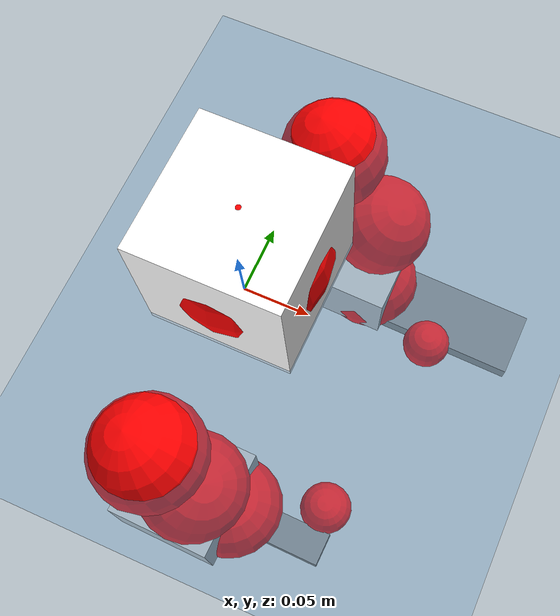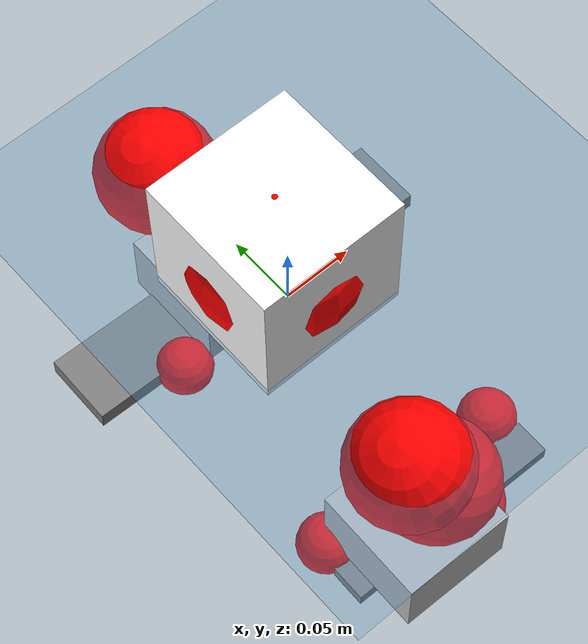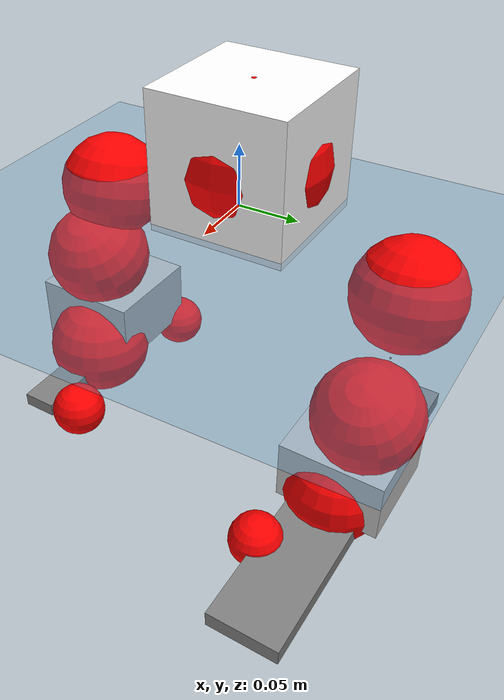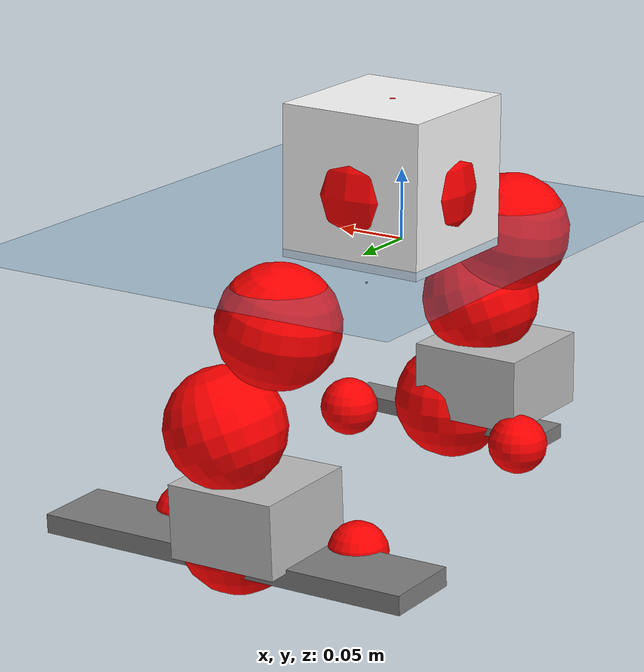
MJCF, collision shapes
<mujoco model="pi_12dof_release_v1">
  <compiler angle="radian" assetdir="assets" balanceinertia="true" inertiafromgeom="false"/>

  <option timestep="0.005" density="1.2" viscosity="2e-05"/>

  <size nkey="1"/>

  <visual>
    <quality shadowsize="8192"/>
    <map shadowclip="0.5"/>
  </visual>

  <default>
    <default class="/">
      <joint armature="0.01" damping="0.01" frictionloss="0.01"/>
      <geom contype="0" conaffinity="0" group="1" solref="-1000 -80"/>
      <site size="0.01 0.005 0.005" group="5"/>
      <general forcelimited="true" biastype="affine" gainprm="20" biasprm="0 -20 -0.5"/>
      <default class="foot">
        <geom size="0.0845 0.036 0.005" type="box" condim="6" group="4" priority="1" friction="0.9 0.2 0.2" solimp="0.015 1 0.005"/>
      </default>
      <default class="reward_collision_sphere">
        <geom group="5" rgba="1 0 0 1"/>
      </default>
    </default>
  </default>

  <asset>
    <texture type="skybox" colorspace="auto" name="//unnamed_texture_0" builtin="gradient" rgb1="0.95 0.95 0.95" rgb2="0.95 0.95 0.95" width="100" height="600"/>
    <texture type="2d" colorspace="auto" name="texplane" builtin="checker" rgb1="0.345 0.575 0.748" rgb2="0.345 0.575 0.748" markrgb="1 1 1" width="512" height="512"/>
    <material name="MatPlane" class="/" texture="texplane" texuniform="true" texrepeat="2 2" specular="0.9"/>
    <mesh name="baselink_1" class="/" file="baselink_1.STL"/>
    <mesh name="r_hip_pitch_link" class="/" file="r_hip_pitch_link.STL"/>
    <mesh name="r_hip_roll_link" class="/" file="r_hip_roll_link.STL"/>
    <mesh name="r_thigh_link" class="/" file="r_thigh_link.STL"/>
    <mesh name="r_calf_link" class="/" file="r_calf_link.STL"/>
    <mesh name="r_ankle_pitch_link" class="/" file="r_ankle_pitch_link.STL"/>
    <mesh name="r_ankle_roll_link" class="/" file="r_ankle_roll_link.STL"/>
    <mesh name="l_hip_pitch_link" class="/" file="l_hip_pitch_link.STL"/>
    <mesh name="l_hip_roll_link" class="/" file="l_hip_roll_link.STL"/>
    <mesh name="l_thigh_link" class="/" file="l_thigh_link.STL"/>
    <mesh name="l_calf_link" class="/" file="l_calf_link.STL"/>
    <mesh name="l_ankle_pitch_link" class="/" file="l_ankle_pitch_link.STL"/>
    <mesh name="l_ankle_roll_link" class="/" file="l_ankle_roll_link.STL"/>
  </asset>

  <worldbody>
    <geom name="floor" class="/" size="100 100 0.125" type="plane" group="0" material="MatPlane"/>
    <light name="toplight_shadow" class="/" pos="0 0 5" dir="0.0990148 0.0990148 -0.990148" type="directional" ambient="0.04 0.04 0.04" diffuse="0.55 0.55 0.55" specular="0.12 0.12 0.12"/>
    <light name="toplight_fill" class="/" pos="0 0 5" dir="0.0990148 0.0990148 -0.990148" type="directional" castshadow="false" ambient="0.04 0.04 0.04" diffuse="0.3 0.3 0.3" specular="0.08 0.08 0.08"/>
    <body name="trunk" pos="0.00148339 0.0115901 0.0070637" quat="0.999983 -0.0024353 -0.00383803 -0.00364415">
      <inertial pos="0.0128672 0.0164545 0.0085701" quat="0.667508 0.00597412 0.043758 0.743292" mass="2.77219" diaginertia="0.0227021 0.127646 0.000143364"/>
      <joint name="//unnamed_joint_0" type="free"/>
      <geom name="//unnamed_geom_1" class="/" type="mesh" density="0" rgba="1 1 1 1" mesh="baselink_1"/>
      <geom name="//unnamed_geom_2" class="/" size="0.0541521 0.0541521 0.0541521" pos="0 0 0.0407953" type="box" rgba="1 1 1 1"/>
      <geom name="//unnamed_geom_3" class="reward_collision_sphere" size="0.0595673" pos="0 0 0.0356959"/>
      <site name="imu" class="/" pos="0.0183509 -0.0138684 -0.0137673" size="0.0108304"/>
      <camera name="track" class="/" pos="0 -3.28148 0" quat="0.707107 0.707107 0 0" mode="trackcom"/>
      <camera name="ego_camera" class="/" pos="0.0823834 0 0.0917894" quat="-0.5 -0.5 0.5 0.5"/>
      <body name="r_hip_pitch_link" pos="-0.00348411 -0.038336 -0.0201197" quat="0.992161 -0.000472192 -0.124958 0.00107339">
        <inertial pos="0.00219736 -0.0769053 -0.00124208" quat="0.0599161 0.692624 0.0093697 0.718745" mass="0.427173" diaginertia="0.00016754 0.00120835 2.75073e-06"/>
        <joint name="r_hip_pitch_joint" class="/" pos="0 0 0" axis="0.00174187 -0.999998 6.01845e-05" range="-1.97018 1.04338" armature="0.0126894" damping="0" frictionloss="0.002341"/>
        <geom name="//unnamed_geom_4" class="/" type="mesh" density="0" rgba="0.75294 0.75294 0.75294 1" mesh="r_hip_pitch_link"/>
        <geom name="//unnamed_geom_5" class="/" size="0.000541521 0.000541521 0.000541521" type="box" rgba="0.75294 0.75294 0.75294 1"/>
        <body name="r_hip_roll_link" pos="-0.0133364 -0.103066 -0.00664653" quat="0.999964 -0.00708658 0.00145639 -0.00445205">
          <inertial pos="-0.000359751 -0.0165973 -0.0260703" quat="0.727533 -0.0967503 -0.0972909 0.672213" mass="0.426777" diaginertia="0.000623956 0.00259249 4.33481e-06"/>
          <joint name="r_hip_roll_joint" class="/" pos="0 0 0" axis="-0.99884 0.0416637 -0.0241206" range="-0.126044 0.499023" armature="0.00303713" damping="0" frictionloss="0.0127906"/>
          <geom name="//unnamed_geom_6" class="/" type="mesh" density="0" rgba="0.75294 0.75294 0.75294 1" mesh="r_hip_roll_link"/>
          <geom name="//unnamed_geom_7" class="/" size="0.000541521 0.000541521 0.000541521" type="box" rgba="0.75294 0.75294 0.75294 1"/>
          <geom name="//unnamed_geom_8" class="reward_collision_sphere" size="0.0433217"/>
          <body name="r_thigh_link" pos="-0.0057112 -0.00547974 -0.0340971" quat="0.999999 -0.000919162 0.000799133 -0.000892469">
            <inertial pos="0.0147661 0.0129929 -0.0108294" quat="0.758291 0.651552 -0.0210543 -0.00556725" mass="0.147758" diaginertia="0.000228342 0.00103337 2.3788e-06"/>
            <joint name="r_thigh_joint" class="/" pos="0 0 0" axis="0.0545411 0.0453805 -0.99748" stiffness="0.0794073" range="0.0258714 0.923356" armature="0.00268092" damping="0.0920576" frictionloss="0.00209559"/>
            <geom name="//unnamed_geom_9" class="/" type="mesh" density="0" rgba="0.75294 0.75294 0.75294 1" mesh="r_thigh_link"/>
            <geom name="//unnamed_geom_10" class="/" size="0.000541521 0.000541521 0.000541521" type="box" rgba="0.75294 0.75294 0.75294 1"/>
            <body name="r_calf_link" pos="0.0168704 0.00456544 -0.0261665" quat="0.947247 0.00122048 0.320494 -0.00228331">
              <inertial pos="0.00412706 -0.0100939 -0.0268031" quat="0.99683 -0.00654989 0.0406094 0.0681058" mass="1.11389" diaginertia="0.0063493 0.0416372 5.3346e-06"/>
              <joint name="r_calf_joint" class="/" pos="0 0 0" axis="0.0702534 -0.996249 -0.050525" stiffness="0.0199169" range="-1.4527 0.747423" armature="0.0103175" damping="0.0422004" frictionloss="0.00255831"/>
              <geom name="//unnamed_geom_11" class="/" type="mesh" density="0" rgba="0.75294 0.75294 0.75294 1" mesh="r_calf_link"/>
              <geom name="//unnamed_geom_12" class="/" size="0.000541521 0.000541521 0.000541521" type="box" rgba="0.75294 0.75294 0.75294 1"/>
              <geom name="//unnamed_geom_13" class="reward_collision_sphere" size="0.0433217"/>
              <body name="r_ankle_pitch_link" pos="0.00837045 0.0020054 -0.0566806" quat="0.980136 -0.000219586 -0.198325 -0.000238802">
                <inertial pos="-0.00439663 0.0169589 -0.0154933" quat="0.0353905 0.719882 0.00245367 0.69319" mass="0.204662" diaginertia="0.000563696 0.0026279 4.11409e-06"/>
                <joint name="r_ankle_pitch_joint" class="/" pos="0 0 0" axis="0.0292867 -0.99957 -0.00141367" stiffness="0.0074413" range="-1.06393 0.811044" armature="0.0039056" damping="0" frictionloss="0.00281508"/>
                <geom name="//unnamed_geom_14" class="/" type="mesh" density="0" rgba="0.75294 0.75294 0.75294 1" mesh="r_ankle_pitch_link"/>
                <geom name="//unnamed_geom_15" class="/" size="0.0422386 0.0433217 0.027076" type="box" rgba="0.75294 0.75294 0.75294 1"/>
                <body name="r_ankle_roll_link" pos="0.0882472 0.0064142 -0.0149155" quat="0.999996 -0.000614836 -0.00260097 0.000912695">
                  <inertial pos="-0.0151616 -0.0111062 -0.0103817" quat="0.56619 0.39248 0.440171 0.57588" mass="0.523243" diaginertia="0.00157243 0.00821127 8.74354e-06"/>
                  <joint name="r_ankle_roll_joint" class="/" pos="0 0 0" axis="-0.995969 -0.075759 -0.0480156" range="-0.491944 -0.115557" armature="0.012799" damping="0" frictionloss="0.00696252"/>
                  <geom name="//unnamed_geom_16" class="/" type="mesh" density="0" rgba="0.75294 0.75294 0.75294 1" mesh="r_ankle_roll_link"/>
                  <geom name="//unnamed_geom_17" class="/" type="mesh" rgba="0.75294 0.75294 0.75294 1" mesh="r_ankle_roll_link"/>
                  <geom name="right_foot" class="foot" size="0.0851794 0.0136484 0.0054207" pos="-0.0560207 0 -0.0224374"/>
                  <geom name="//unnamed_geom_19" class="reward_collision_sphere" size="0.0433217" pos="-0.0549222 0 -0.0101988"/>
                  <geom name="//unnamed_geom_20" class="reward_collision_sphere" size="0.0216608" pos="0.0164767 0.0328148 -0.0203976"/>
                  <geom name="//unnamed_geom_21" class="reward_collision_sphere" size="0.0216608" pos="-0.131813 0.0328148 -0.0203976"/>
                  <site name="right_foot" class="foot" pos="-0.0560207 0 -0.0224374" size="0.0108304"/>
                </body>
              </body>
            </body>
          </body>
        </body>
      </body>
      <body name="l_hip_pitch_link" pos="0.00142294 0.0287398 -0.0295264" quat="0.992218 0.000255122 -0.12451 0.00105208">
        <inertial pos="-0.00439038 0.0949467 -0.0109922" quat="-0.0461437 0.724384 0.0199724 0.68756" mass="0.662937" diaginertia="0.000241226 0.00154031 3.33212e-06"/>
        <joint name="l_hip_pitch_joint" class="/" pos="0 0 0" axis="-0.0373299 0.999294 -0.00431782" range="-1.32198 1.46483" armature="0.0130696" damping="0" frictionloss="0.0114128"/>
        <geom name="//unnamed_geom_22" class="/" type="mesh" density="0" rgba="0.75294 0.75294 0.75294 1" mesh="l_hip_pitch_link"/>
        <geom name="//unnamed_geom_23" class="/" size="0.000541521 0.000541521 0.000541521" type="box" rgba="0.75294 0.75294 0.75294 1"/>
        <body name="l_hip_roll_link" pos="0.00213778 0.102602 -0.00621565" quat="0.999969 -0.00553067 0.00480159 -0.00273877">
          <inertial pos="-0.00444117 -0.0173324 -0.0385189" quat="0.686897 -0.0146733 -0.0718014 0.72305" mass="0.592557" diaginertia="0.000597484 0.00286106 3.59895e-06"/>
          <joint name="l_hip_roll_joint" class="/" pos="0 0 0" axis="-0.998211 -0.0568719 0.0184444" range="-0.460026 -0.0318015" armature="0.00157528" damping="0" frictionloss="0.0163655"/>
          <geom name="//unnamed_geom_24" class="/" type="mesh" density="0" rgba="0.75294 0.75294 0.75294 1" mesh="l_hip_roll_link"/>
          <geom name="//unnamed_geom_25" class="/" size="0.000541521 0.000541521 0.000541521" type="box" rgba="0.75294 0.75294 0.75294 1"/>
          <geom name="//unnamed_geom_26" class="reward_collision_sphere" size="0.0433217"/>
          <body name="l_thigh_link" pos="0.00875318 0.000166245 -0.0473602" quat="0.999988 0.000370653 0.00437609 -0.00234199">
            <inertial pos="-0.0011792 -0.0156661 -0.0209187" quat="0.683336 0.730035 -0.00372779 -0.00933955" mass="0.146329" diaginertia="0.000216479 0.00122246 2.18335e-06"/>
            <joint name="l_thigh_joint" class="/" pos="0 0 0" axis="-0.00158407 -0.011164 -0.999936" range="-0.748629 0.170558" armature="0.0168187" damping="0.0829697" frictionloss="0.00686782"/>
            <geom name="//unnamed_geom_27" class="/" type="mesh" density="0" rgba="0.75294 0.75294 0.75294 1" mesh="l_thigh_link"/>
            <geom name="//unnamed_geom_28" class="/" size="0.000541521 0.000541521 0.000541521" type="box" rgba="0.75294 0.75294 0.75294 1"/>
            <body name="l_calf_link" pos="0.0165997 -0.00194121 -0.0420309" quat="0.947038 -0.00822795 0.321007 0.00242204">
              <inertial pos="-0.00249914 0.0133606 -0.0313892" quat="0.999979 -0.00214017 0.00250643 0.00565495" mass="1.15346" diaginertia="0.00635169 0.042474 5.24475e-06"/>
              <joint name="l_calf_joint" class="/" pos="0 0 0" axis="-0.050773 0.998689 0.00648817" stiffness="0.0867516" range="-0.93187 1.80285" armature="0.0151922" damping="0.00156183" frictionloss="0.00721436"/>
              <geom name="//unnamed_geom_29" class="/" type="mesh" density="0" rgba="0.75294 0.75294 0.75294 1" mesh="l_calf_link"/>
              <geom name="//unnamed_geom_30" class="/" size="0.000541521 0.000541521 0.000541521" type="box" rgba="0.75294 0.75294 0.75294 1"/>
              <geom name="//unnamed_geom_31" class="reward_collision_sphere" size="0.0433217"/>
              <body name="l_ankle_pitch_link" pos="0.0118872 -0.0130236 -0.064046" quat="0.980642 8.98984e-05 -0.195786 -0.00295312">
                <inertial pos="0.00435729 0.0114201 0.00329149" quat="-0.0216711 0.705056 -0.00983441 0.708752" mass="0.189135" diaginertia="0.000477717 0.0026512 4.37435e-06"/>
                <joint name="l_ankle_pitch_joint" class="/" pos="0 0 0" axis="0.0009726 0.99987 0.0161171" range="-0.419299 1.34554" armature="0.0181767" damping="0" frictionloss="0.0167774"/>
                <geom name="//unnamed_geom_32" class="/" type="mesh" density="0" rgba="0.75294 0.75294 0.75294 1" mesh="l_ankle_pitch_link"/>
                <geom name="//unnamed_geom_33" class="/" size="0.0422386 0.0433217 0.027076" type="box" rgba="0.75294 0.75294 0.75294 1"/>
                <body name="l_ankle_roll_link" pos="0.0721696 -0.00230949 -0.00873976" quat="0.999998 0.00148194 -0.000275374 -0.00100221">
                  <inertial pos="-0.0157693 -0.00402109 -0.0076018" quat="0.559365 0.430625 0.434266 0.55954" mass="0.564" diaginertia="0.00165875 0.010831 1.02132e-05"/>
                  <joint name="l_ankle_roll_joint" class="/" pos="0 0 0" axis="-0.999847 -0.00657311 0.0162348" range="-0.482801 0.132933" armature="0.0130943" damping="0.0921806" frictionloss="0.0150724"/>
                  <geom name="//unnamed_geom_34" class="/" type="mesh" density="0" rgba="0.75294 0.75294 0.75294 1" mesh="l_ankle_roll_link"/>
                  <geom name="//unnamed_geom_35" class="/" type="mesh" rgba="0.75294 0.75294 0.75294 1" mesh="l_ankle_roll_link"/>
                  <geom name="left_foot" class="foot" size="0.149388 0.0293619 0.00702674" pos="-0.0560207 0 -0.0224374"/>
                  <geom name="//unnamed_geom_37" class="reward_collision_sphere" size="0.0433217" pos="-0.0549222 0 -0.0101988"/>
                  <geom name="//unnamed_geom_38" class="reward_collision_sphere" size="0.0216608" pos="0.0164767 -0.0328148 -0.0203976"/>
                  <geom name="//unnamed_geom_39" class="reward_collision_sphere" size="0.0216608" pos="-0.131813 -0.0328148 -0.0203976"/>
                  <site name="left_foot" class="foot" pos="-0.0560207 0 -0.0224374" size="0.0108304"/>
                </body>
              </body>
            </body>
          </body>
        </body>
      </body>
    </body>
  </worldbody>

  <contact>
    <pair class="/" geom1="floor" geom2="right_foot" name="//unnamed_contact_1"/>
    <pair class="/" geom1="floor" geom2="left_foot" name="//unnamed_contact_0"/>
  </contact>

  <actuator>
    <general name="r_hip_pitch_joint" class="/" joint="r_hip_pitch_joint" forcerange="-29.9383 29.9383" gainprm="26.6137" biasprm="0 -26.6137 -0.448275"/>
    <general name="r_hip_roll_joint" class="/" joint="r_hip_roll_joint" forcerange="-8.29377 8.29377" gainprm="26.6137" biasprm="0 -26.6137 -0.448275"/>
    <general name="r_thigh_joint" class="/" joint="r_thigh_joint" forcerange="-22.584 22.584" gainprm="26.6137" biasprm="0 -26.6137 -0.448275"/>
    <general name="r_calf_joint" class="/" joint="r_calf_joint" forcerange="-20.0676 20.0676" gainprm="26.6137" biasprm="0 -26.6137 -0.448275"/>
    <general name="r_ankle_pitch_joint" class="/" joint="r_ankle_pitch_joint" forcerange="-23.2133 23.2133" gainprm="26.6137" biasprm="0 -26.6137 -0.448275"/>
    <general name="r_ankle_roll_joint" class="/" joint="r_ankle_roll_joint" forcerange="-11.7435 11.7435" gainprm="26.6137" biasprm="0 -26.6137 -0.448275"/>
    <general name="l_hip_pitch_joint" class="/" joint="l_hip_pitch_joint" forcerange="-14.9798 14.9798" gainprm="26.6137" biasprm="0 -26.6137 -0.448275"/>
    <general name="l_hip_roll_joint" class="/" joint="l_hip_roll_joint" forcerange="-23.1911 23.1911" gainprm="26.6137" biasprm="0 -26.6137 -0.448275"/>
    <general name="l_thigh_joint" class="/" joint="l_thigh_joint" forcerange="-20.6083 20.6083" gainprm="26.6137" biasprm="0 -26.6137 -0.448275"/>
    <general name="l_calf_joint" class="/" joint="l_calf_joint" forcerange="-30.9911 30.9911" gainprm="26.6137" biasprm="0 -26.6137 -0.448275"/>
    <general name="l_ankle_pitch_joint" class="/" joint="l_ankle_pitch_joint" forcerange="-24.6382 24.6382" gainprm="26.6137" biasprm="0 -26.6137 -0.448275"/>
    <general name="l_ankle_roll_joint" class="/" joint="l_ankle_roll_joint" forcerange="-33.3651 33.3651" gainprm="26.6137" biasprm="0 -26.6137 -0.448275"/>
  </actuator>

  <sensor>
    <gyro site="imu" name="imu_angular_velocity"/>
    <velocimeter site="imu" name="imu_linear_velocity"/>
    <framelinvel objtype="site" objname="left_foot" name="left_foot_global_linear_velocity"/>
    <framelinvel objtype="site" objname="right_foot" name="right_foot_global_linear_velocity"/>
  </sensor>

  <keyframe>
    <key name="home" qpos="0 0 0.291 1 0 0 0 0.4 0 0 -0.8 0.4 0 -0.4 0 0 0.8 -0.4 0"/>
  </keyframe>
</mujoco>
